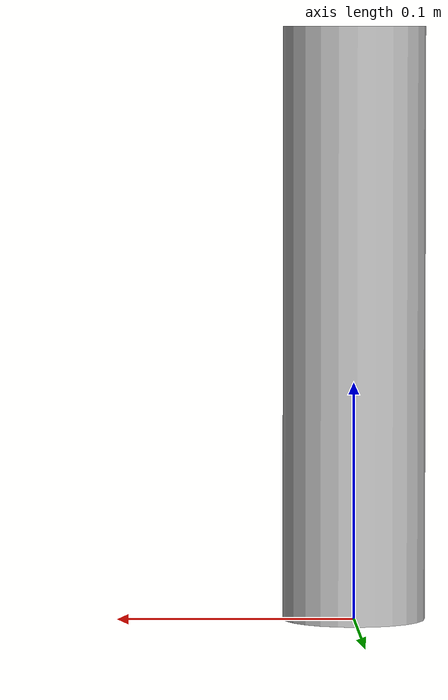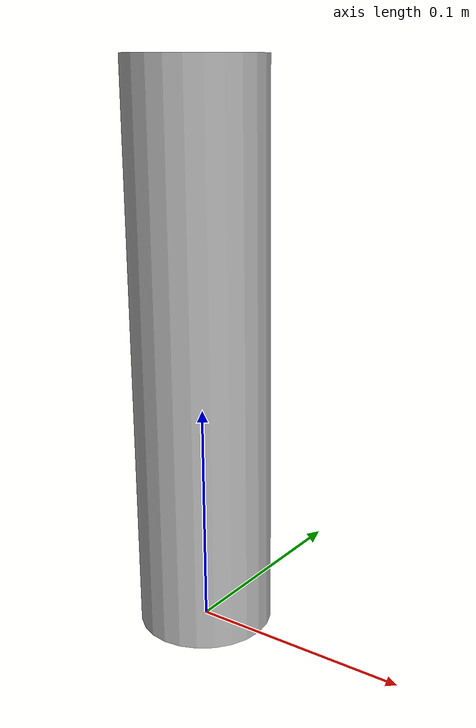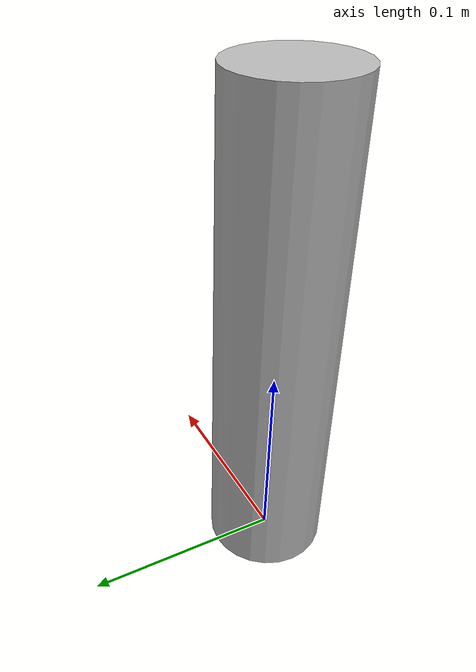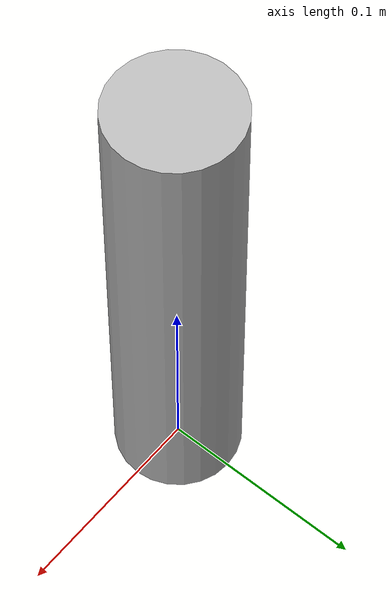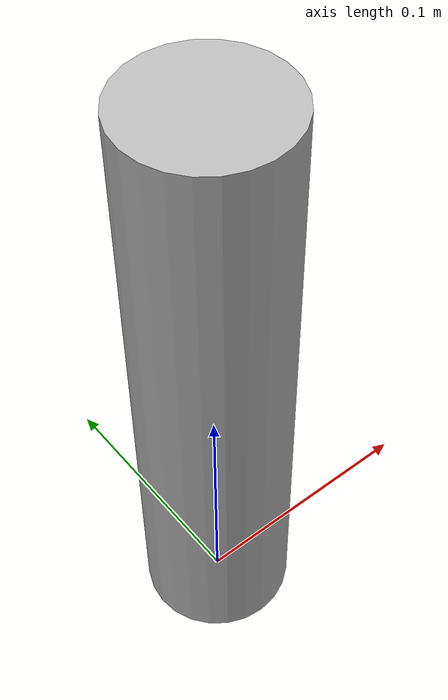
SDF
<sdf version='1.6'>
  <model name='cylinder'>
    <link name='main_body'>
      <pose frame=''>0 0 0 0 0 0</pose>
      <inertial>
        <mass>0.2</mass>
        <!-- xx, yy = m/12*(3r**2+h**2), zz = mr**2/2-->
        <!-- https://en.wikipedia.org/wiki/List_of_moments_of_inertia#List_of_3D_inertia_tensors -->
        <pose frame=''>0 0 0.125 0 0 0</pose>
        <inertia>
          <ixx>1.0867e-3</ixx>
          <ixy>0</ixy>
          <ixz>0</ixz>
          <iyy>1.0867e-3</iyy>
          <iyz>0</iyz>
          <izz>9e-05</izz>
        </inertia>
      </inertial>

      <collision name='main_body_collision'>
        <pose frame=''>0 0 0.125 0 0 0</pose>
        <geometry>
          <cylinder>
            <length>0.25</length>
            <radius>0.03</radius>
          </cylinder>
        </geometry>
        <surface>
          <friction>
            <ode>
              <mu>0.9</mu>
              <mu2>0.5</mu2>
            </ode>
          </friction>
        </surface>
      </collision>

      <visual name='main_body_visual'>
        <pose frame=''>0 0 0.125 0 0 0</pose>
        <geometry>
          <cylinder>
            <length>0.25</length>
            <radius>0.03</radius>
          </cylinder>
        </geometry>
      </visual>

    </link>
  </model>
</sdf>
